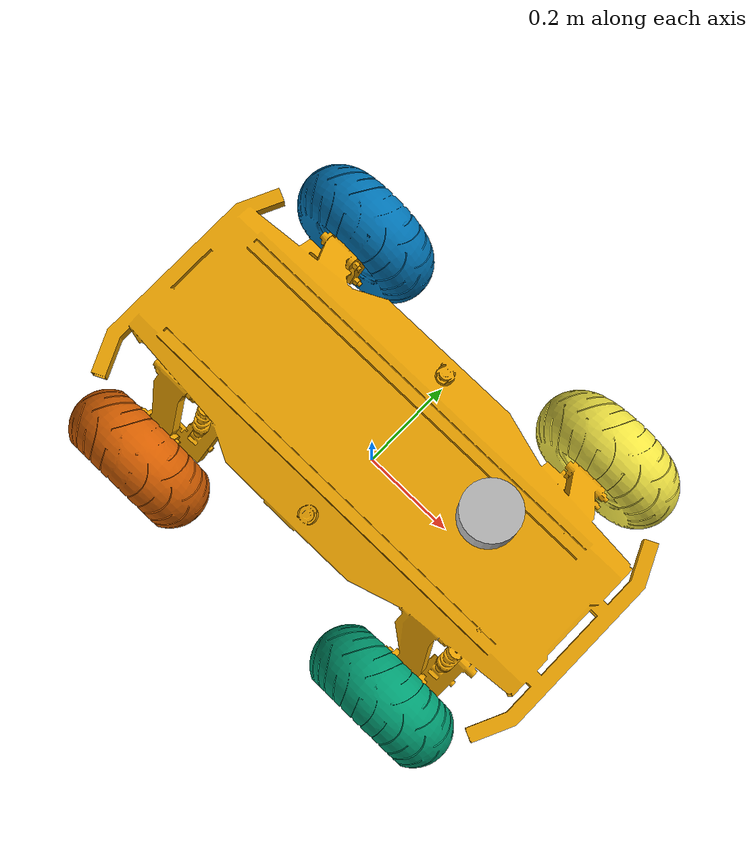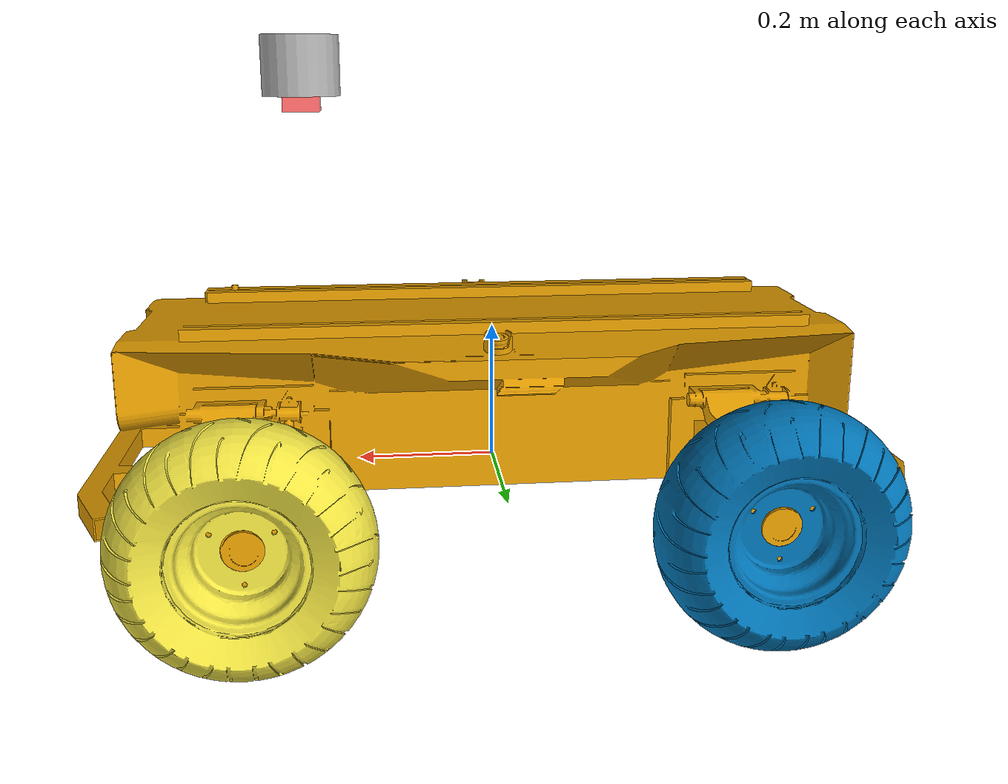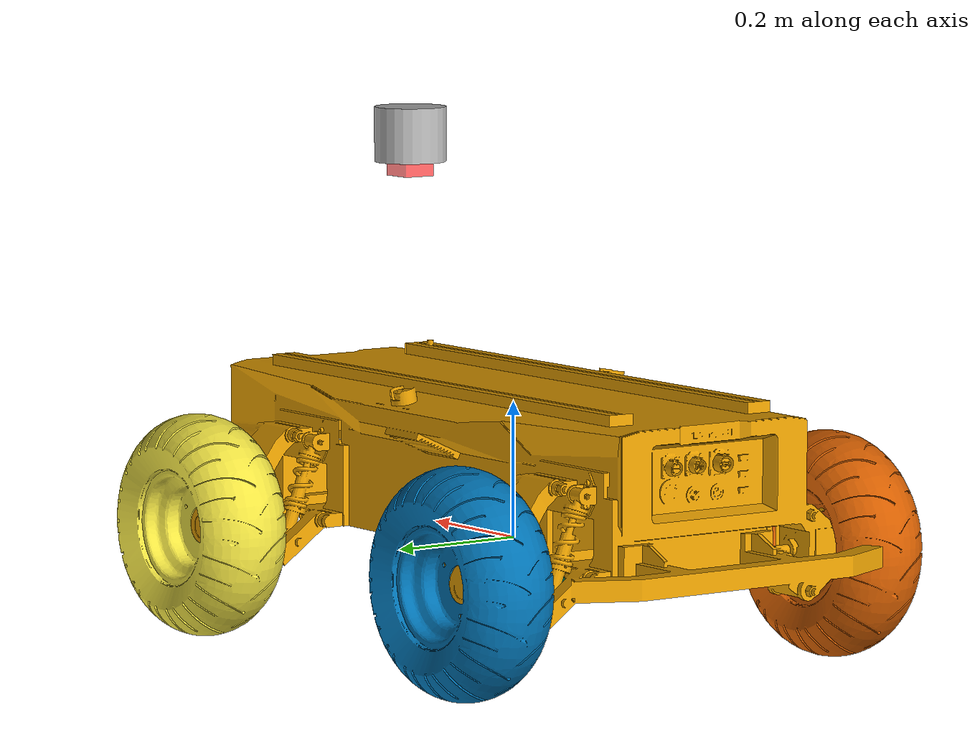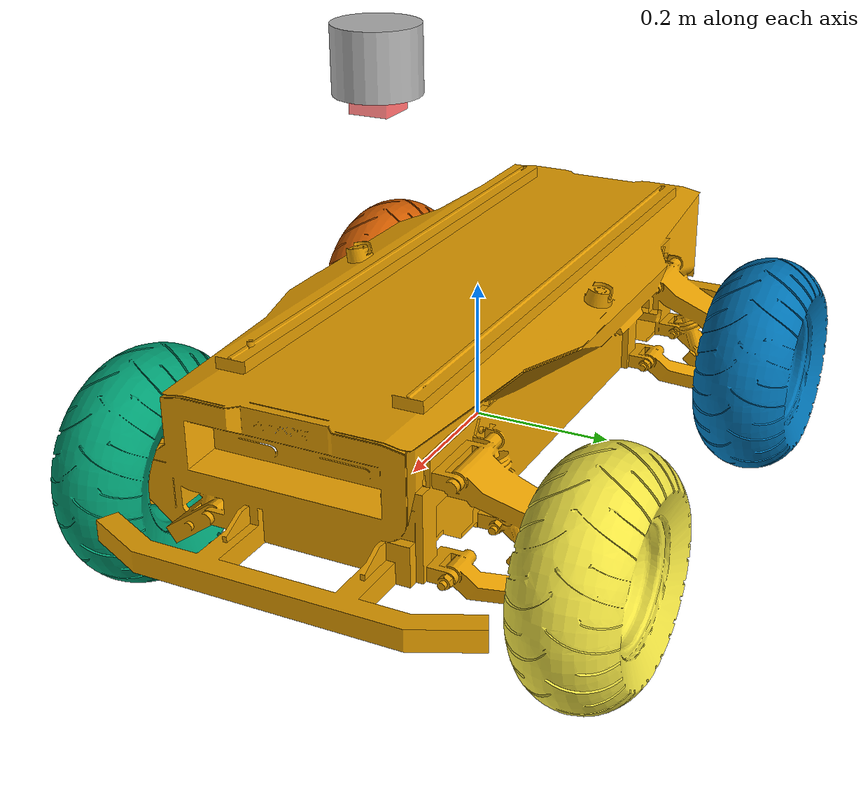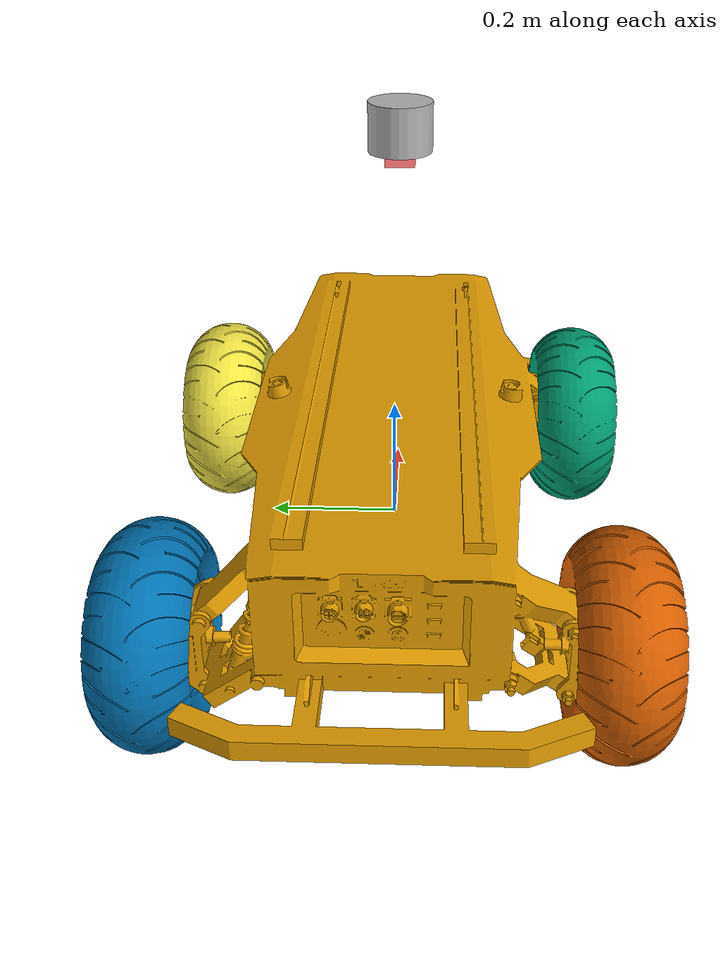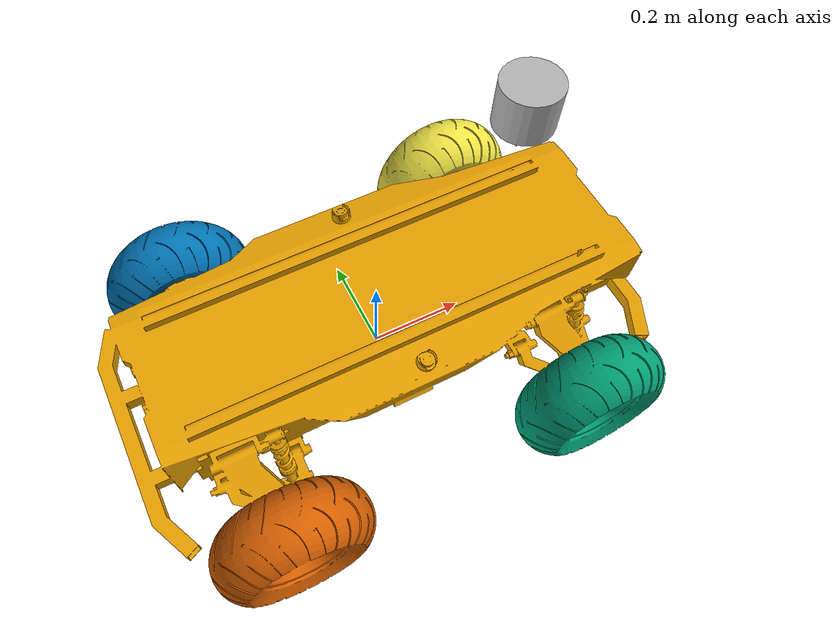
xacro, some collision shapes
<?xml version="1.0"?>

<robot name="dr100"  xmlns:xacro="http://ros.org/wiki/xacro">

    <xacro:arg name="robot_namespace" default="/" />

    <!-- Property Encapsulation -->
    <xacro:property name="M_PI" value="3.14159"/>

    <xacro:property name="base_link_x_size" value="1.128" />
    <xacro:property name="base_link_y_size" value="0.78937" />
    <xacro:property name="base_link_z_size" value="0.222" />

    <xacro:property name="wheel_mass" value="3" />
    <xacro:property name="wheel_length" value="0.14113" />
    <xacro:property name="wheel_radius" value="0.16416" />
    <xacro:property name="wheelbase" value="0.672" />
    <xacro:property name="track" value="0.64824" />
    <xacro:property name="wheel_vertical_offset" value="0.00432" />

    <!-- Chassis -->
    <link name="base_link">
        <visual>
            <geometry>
                <mesh filename="package://dr100/meshes/base_link.STL" />
            </geometry>
        </visual>
        <collision>
            <origin xyz="0 0 ${base_link_z_size/2}" rpy="0 0 0" />
            <geometry>
                <box size="${base_link_x_size} ${base_link_y_size} ${base_link_z_size}"/>
            </geometry>
        </collision>
    </link>
    <link name="inertial_link">
        <inertial>
            <mass value="40" />
            <origin xyz="0.0 0.0 0.0" />
            <inertia ixx="3.791" ixy="-0.012" ixz="0.007" iyy="7.879" iyz="0.023" izz="9.703" />
        </inertial>
    </link>
    <joint name="inertial_joint" type="fixed">
        <origin xyz="0 0 0" rpy="0 0 0" />
        <parent link="base_link" />
        <child link="inertial_link" />
    </joint>

    <!-- Inertial -->
    <xacro:include filename="$(find dr100)/urdf/inertial.xacro" />

    <!-- Wheels -->
    <xacro:include filename="$(find dr100)/urdf/dr100_wheel.xacro" />

    <!-- IMU -->
    <xacro:include filename="$(find dr100)/urdf/dr100_imu.xacro" />
    <xacro:imu sensor_name="imu" parent_link="base_link">
        <origin xyz="0.265 0 0.5355" rpy="0 0 0"/>
    </xacro:imu>

    <!-- LiDAR -->
    <xacro:include filename="$(find dr100)/urdf/dr100_lidar.xacro"/>
    <xacro:robosense name="robosense" parent_link="base_link">
        <origin xyz="0.265 0 0.5725" rpy="0 0 0" />
    </xacro:robosense>
</robot>

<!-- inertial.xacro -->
<!-- This file mainly describes the moment of inertia for objects of various shapes -->
<robot name="base" xmlns:xacro="http://wiki.ros.org/xacro">
    <!-- Macro for inertia matrix -->
    <xacro:macro name="sphere_inertial_matrix" params="m r">
        <inertial>
            <mass value="${m}" />
            <inertia ixx="${2*m*r*r/5}" ixy="0" ixz="0"
                iyy="${2*m*r*r/5}" iyz="0"
                izz="${2*m*r*r/5}" />
        </inertial>
    </xacro:macro>

    <xacro:macro name="cylinder_inertial_matrix" params="m r h">
        <inertial>
            <mass value="${m}" />
            <inertia ixx="${m*(3*r*r+h*h)/12}" ixy = "0" ixz = "0"
                iyy="${m*(3*r*r+h*h)/12}" iyz = "0"
                izz="${m*r*r/2}" />
        </inertial>
    </xacro:macro>

    <xacro:macro name="Box_inertial_matrix" params="m l w h">
       <inertial>
               <mass value="${m}" />
               <inertia ixx="${m*(h*h + l*l)/12}" ixy = "0" ixz = "0"
                   iyy="${m*(w*w + l*l)/12}" iyz= "0"
                   izz="${m*(w*w + h*h)/12}" />
       </inertial>
   </xacro:macro>
</robot>

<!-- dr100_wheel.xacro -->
<robot xmlns:xacro="http://ros.org/wiki/xacro" name="dr100_wheel">

    <!-- Wheel Macro -->
    <xacro:macro name="dr100_wheel" params="wheel_prefix *joint_pose">
        <link name="${wheel_prefix}_wheel_link">
            <inertial>
                <mass value="${wheel_mass}" />
                <origin xyz="0 0 0" />
                <inertia ixx="0.019" ixy="0" ixz="0" iyy="0.032" iyz="0" izz="0.019" />
            </inertial>
            <visual>
                <origin xyz="${-wheel_radius} ${-wheel_length/2} ${-wheel_radius}" rpy="0 0 0" />
                <geometry>
                    <mesh filename="package://dr100/meshes/wheel.STL" />
                </geometry>
            </visual>
            <collision>
                <origin xyz="0 0 0" rpy="${M_PI/2} 0 0" />
                <geometry>
                    <cylinder length="${wheel_length}" radius="${wheel_radius}" />
                </geometry>
            </collision>
        </link>

        <joint name="${wheel_prefix}_wheel" type="continuous">
            <parent link="base_link"/>
            <child link="${wheel_prefix}_wheel_link"/>
            <xacro:insert_block name="joint_pose"/>
            <axis xyz="0 1 0" rpy="0 0 0" />
        </joint>
    </xacro:macro>

    <!-- Chassis wheels -->
    <xacro:dr100_wheel wheel_prefix="front_right">
        <origin xyz="${wheelbase/2} ${-track/2} ${wheel_vertical_offset}" rpy="0 0 0" />
    </xacro:dr100_wheel>
    <xacro:dr100_wheel wheel_prefix="front_left">
        <origin xyz="${wheelbase/2} ${track/2} ${wheel_vertical_offset}" rpy="0 0 0" />
    </xacro:dr100_wheel>
    <xacro:dr100_wheel wheel_prefix="rear_left">
        <origin xyz="${-wheelbase/2} ${track/2} ${wheel_vertical_offset}" rpy="0 0 0" />
    </xacro:dr100_wheel>
    <xacro:dr100_wheel wheel_prefix="rear_right">
        <origin xyz="${-wheelbase/2} ${-track/2} ${wheel_vertical_offset}" rpy="0 0 0" />
    </xacro:dr100_wheel>

</robot>

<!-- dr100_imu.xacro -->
<robot xmlns:xacro="http://wiki.ros.org/xacro">
    <xacro:macro name="imu" params="sensor_name parent_link *origin">
        <xacro:property name="imu_offset_x" value="0" />
        <xacro:property name="imu_offset_y" value="0" />
        <xacro:property name="imu_offset_z" value="0.2" />
        <xacro:property name="imu_size"     value="0.05" />
        <xacro:property name="imu_mass" value="0.01" />

        <!-- IMU -->
        <joint name="imu_to_base" type="fixed">
            <xacro:insert_block name="origin" />
            <parent link="${parent_link}"/>
            <child link="imu_base"/>
        </joint>
        <link name="imu_base">
            <visual>
                <origin rpy="0 0 0" xyz="0 0 0" />
                <geometry>
                    <box size="${imu_size} ${imu_size} ${imu_size}"/>
                </geometry>
                <material name= "black" >
                    <color rgba="1.0 0.0 0.0 0.6" />
                </material>
            </visual>
            <collision>
                <geometry>
                    <box size="${imu_size} ${imu_size} ${imu_size}" />
                </geometry>
                <origin xyz="0.0 0.0 0" rpy="0.0 0.0 0.0" />
            </collision>
            <xacro:Box_inertial_matrix m = "${imu_mass}" l = "${imu_size}" w = "${imu_size}" h = "${imu_size}"/>
        </link>
    </xacro:macro>
</robot>

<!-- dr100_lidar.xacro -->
<robot xmlns:xacro="http://www.ros.org/wiki/xacro">
    <xacro:macro name="robosense" params="name:=robosense parent_link:=base_link *origin">
        <joint name="${name}_base_mount_joint" type="fixed">
            <xacro:insert_block name="origin" />
            <parent link="${parent_link}"/>
            <child link="${name}_base_link"/>
        </joint>
        <link name="${name}_base_link">
            <inertial>
                <mass value="0.87"/>
                <origin xyz="0 0 0"/>
                <inertia ixx="0.001094695" ixy="0" ixz="0"
            iyy="0.001094695" iyz="0"
            izz="0.001245079"/>
            </inertial>
            <visual>
                <origin rpy="-1.5707 0 0" xyz="0 0 0"/>
                <geometry>
                    <mesh filename="package://dr100/meshes/robosense_16.dae" />
                </geometry>
            </visual>
            <collision>
                <origin rpy="0 0 0" xyz="0 0 0"/>
                <geometry>
                    <cylinder radius="0.0535" length="0.0817"/>
                </geometry>
            </collision>
        </link>
        <joint name="_base_scan_joint" type="fixed" >
            <origin xyz="0 0 0.039" rpy="0 0 0" />
            <parent link="${name}_base_link" />
            <child link="${name}"/>
        </joint>
        <link name="${name}">
            <inertial>
                <mass value="0.01"/>
                <origin xyz="0 0 0"/>
                <inertia ixx="1e-7" ixy="0" ixz="0" iyy="1e-7" iyz="0" izz="1e-7"/>
            </inertial>
        </link>
    </xacro:macro>
</robot>
